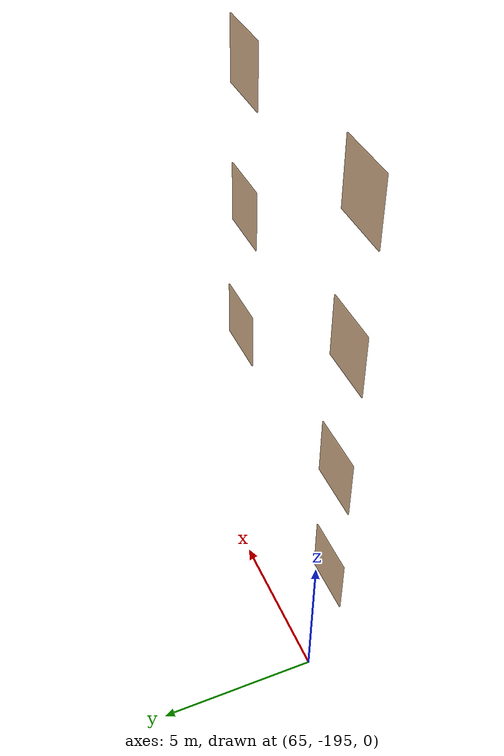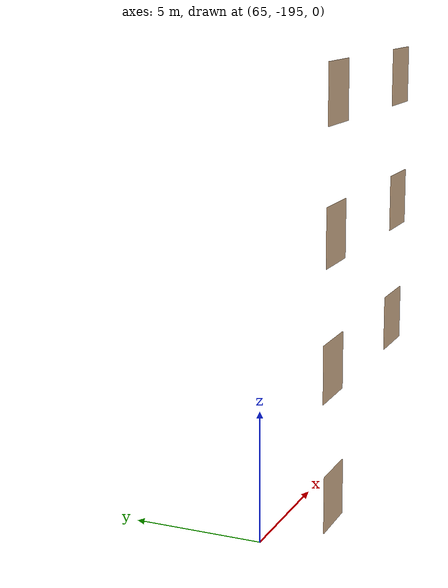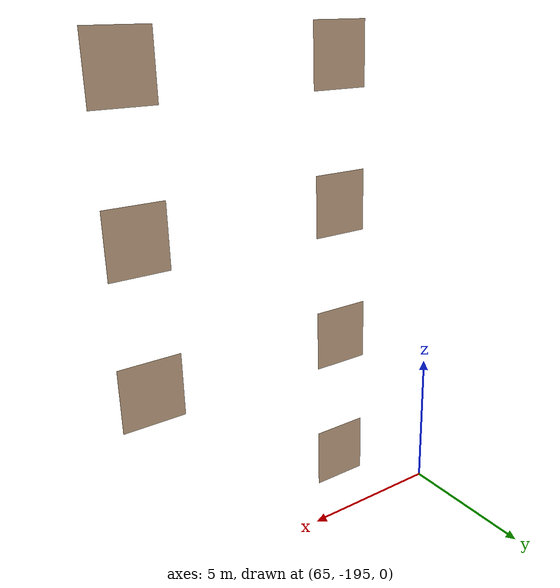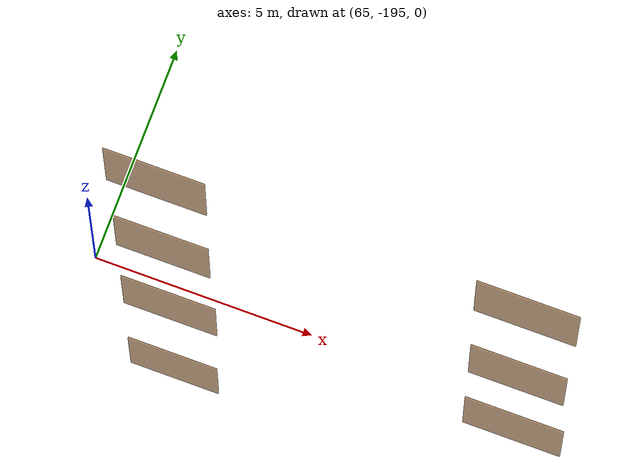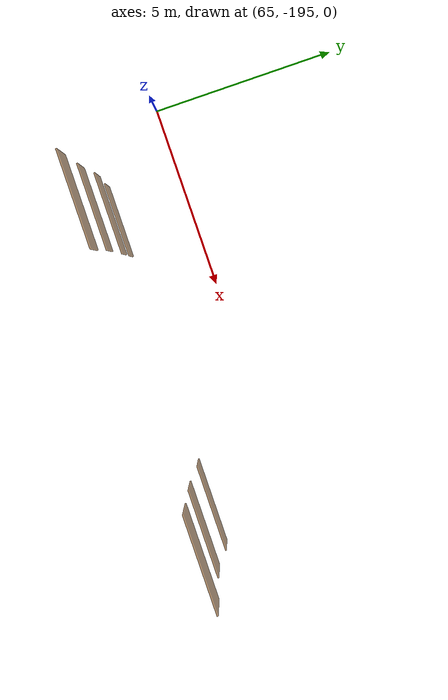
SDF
<sdf version="1.7">
 <world name="sim_world">
  <model name="puerta89">
   <pose>67.54623232504028 -196.90524431716483 0.0 0 0 3.141592653589793</pose>
   <link name="right">
    <pose>0 0 1.11 0 0 0</pose>
    <visual name="right_visual">
     <geometry><box><size>2.0210005369608037 0.03 2.2</size></box></geometry>
     <material>
      <ambient>0.5 0.25 0 0.6</ambient>
      <diffuse>0.5 0.25 0 0.6</diffuse>
      <pbr><metal><metalness>0.0</metalness></metal></pbr>
     </material>
    </visual>
    <collision name="right_collision">
     <geometry><box><size>2.0210005369608037 0.03 2.2</size></box></geometry>
     <surface><contact><collide_bitmask>0x02</collide_bitmask></contact></surface>
    </collision>
    <inertial>
     <mass>50.0</mass>
     <inertia><ixx>20.17041666666667</ixx><iyy>37.18517987664941</iyy><izz>17.022263209982736</izz></inertia>
    </inertial>
   </link>
   <joint name="right_joint" type="revolute">
    <parent>world</parent>
    <child>right</child>
    <axis><xyz>0 0 -1</xyz><limit><lower>0</lower><upper>1.57</upper></limit></axis>
    <pose>1.0155002684804018 0 0 0 0 0</pose>
   </joint>
   <plugin name="register_component" filename="libregister_component.so">
    <component name="Door">
     <v_max_door>0.5</v_max_door>
     <a_max_door>0.3</a_max_door>
     <a_nom_door>0.15</a_nom_door>
     <dx_min_door>0.01</dx_min_door>
     <f_max_door>500.0</f_max_door>
     <ros_interface>true</ros_interface>
     <door name="puerta89" type="SwingDoor" left_joint_name="empty_joint" right_joint_name="right_joint"/>
    </component>
   </plugin>
  </model>
  <model name="puerta3186">
   <pose>67.54969612150772 -196.83661211145593 5.0 0 0 -3.141581399112606</pose>
   <link name="right">
    <pose>0 0 1.11 0 0 0</pose>
    <visual name="right_visual">
     <geometry><box><size>2.0685419905701186 0.03 2.2</size></box></geometry>
     <material>
      <ambient>0.5 0.25 0 0.6</ambient>
      <diffuse>0.5 0.25 0 0.6</diffuse>
      <pbr><metal><metalness>0.0</metalness></metal></pbr>
     </material>
    </visual>
    <collision name="right_collision">
     <geometry><box><size>2.0685419905701186 0.03 2.2</size></box></geometry>
     <surface><contact><collide_bitmask>0x02</collide_bitmask></contact></surface>
    </collision>
    <inertial>
     <mass>50.0</mass>
     <inertia><ixx>20.17041666666667</ixx><iyy>37.995274861465795</iyy><izz>17.83235819479912</izz></inertia>
    </inertial>
   </link>
   <joint name="right_joint" type="revolute">
    <parent>world</parent>
    <child>right</child>
    <axis><xyz>0 0 -1</xyz><limit><lower>0</lower><upper>1.57</upper></limit></axis>
    <pose>1.0392709952850592 0 0 0 0 0</pose>
   </joint>
   <plugin name="register_component" filename="libregister_component.so">
    <component name="Door">
     <v_max_door>0.5</v_max_door>
     <a_max_door>0.3</a_max_door>
     <a_nom_door>0.15</a_nom_door>
     <dx_min_door>0.01</dx_min_door>
     <f_max_door>500.0</f_max_door>
     <ros_interface>true</ros_interface>
     <door name="puerta3186" type="SwingDoor" left_joint_name="empty_joint" right_joint_name="right_joint"/>
    </component>
   </plugin>
  </model>
  <model name="puerta3187">
   <pose>75.07376055382997 -196.7878787243191 5.0 0 0 1.1254477184163925e-05</pose>
   <link name="right">
    <pose>0 0 1.11 0 0 0</pose>
    <visual name="right_visual">
     <geometry><box><size>2.1414613560081013 0.03 2.2</size></box></geometry>
     <material>
      <ambient>0.5 0.25 0 0.6</ambient>
      <diffuse>0.5 0.25 0 0.6</diffuse>
      <pbr><metal><metalness>0.0</metalness></metal></pbr>
     </material>
    </visual>
    <collision name="right_collision">
     <geometry><box><size>2.1414613560081013 0.03 2.2</size></box></geometry>
     <surface><contact><collide_bitmask>0x02</collide_bitmask></contact></surface>
    </collision>
    <inertial>
     <mass>50.0</mass>
     <inertia><ixx>20.17041666666667</ixx><iyy>39.27440308031691</iyy><izz>19.111486413650233</izz></inertia>
    </inertial>
   </link>
   <joint name="right_joint" type="revolute">
    <parent>world</parent>
    <child>right</child>
    <axis><xyz>0 0 1</xyz><limit><lower>0</lower><upper>1.57</upper></limit></axis>
    <pose>1.0757306780040505 0 0 0 0 0</pose>
   </joint>
   <plugin name="register_component" filename="libregister_component.so">
    <component name="Door">
     <v_max_door>0.5</v_max_door>
     <a_max_door>0.3</a_max_door>
     <a_nom_door>0.15</a_nom_door>
     <dx_min_door>0.01</dx_min_door>
     <f_max_door>500.0</f_max_door>
     <ros_interface>true</ros_interface>
     <door name="puerta3187" type="SwingDoor" left_joint_name="empty_joint" right_joint_name="right_joint"/>
    </component>
   </plugin>
  </model>
  <model name="puerta5283">
   <pose>67.54475383392965 -196.89025838553226 10.0 0 0 3.1415879627127286</pose>
   <link name="right">
    <pose>0 0 1.11 0 0 0</pose>
    <visual name="right_visual">
     <geometry><box><size>2.001789246754653 0.03 2.2</size></box></geometry>
     <material>
      <ambient>0.5 0.25 0 0.6</ambient>
      <diffuse>0.5 0.25 0 0.6</diffuse>
      <pbr><metal><metalness>0.0</metalness></metal></pbr>
     </material>
    </visual>
    <collision name="right_collision">
     <geometry><box><size>2.001789246754653 0.03 2.2</size></box></geometry>
     <surface><contact><collide_bitmask>0x02</collide_bitmask></contact></surface>
    </collision>
    <inertial>
     <mass>50.0</mass>
     <inertia><ixx>20.17041666666667</ixx><iyy>36.86316745176068</iyy><izz>16.700250785094006</izz></inertia>
    </inertial>
   </link>
   <joint name="right_joint" type="revolute">
    <parent>world</parent>
    <child>right</child>
    <axis><xyz>0 0 -1</xyz><limit><lower>0</lower><upper>1.57</upper></limit></axis>
    <pose>1.0058946233773265 0 0 0 0 0</pose>
   </joint>
   <plugin name="register_component" filename="libregister_component.so">
    <component name="Door">
     <v_max_door>0.5</v_max_door>
     <a_max_door>0.3</a_max_door>
     <a_nom_door>0.15</a_nom_door>
     <dx_min_door>0.01</dx_min_door>
     <f_max_door>500.0</f_max_door>
     <ros_interface>true</ros_interface>
     <door name="puerta5283" type="SwingDoor" left_joint_name="empty_joint" right_joint_name="right_joint"/>
    </component>
   </plugin>
  </model>
  <model name="puerta5284">
   <pose>75.05586300327502 -196.91072641288815 10.0 0 0 -4.690877064614575e-06</pose>
   <link name="right">
    <pose>0 0 1.11 0 0 0</pose>
    <visual name="right_visual">
     <geometry><box><size>2.0120235357011587 0.03 2.2</size></box></geometry>
     <material>
      <ambient>0.5 0.25 0 0.6</ambient>
      <diffuse>0.5 0.25 0 0.6</diffuse>
      <pbr><metal><metalness>0.0</metalness></metal></pbr>
     </material>
    </visual>
    <collision name="right_collision">
     <geometry><box><size>2.0120235357011587 0.03 2.2</size></box></geometry>
     <surface><contact><collide_bitmask>0x02</collide_bitmask></contact></surface>
    </collision>
    <inertial>
     <mass>50.0</mass>
     <inertia><ixx>20.17041666666667</ixx><iyy>37.03432795089748</iyy><izz>16.8714112842308</izz></inertia>
    </inertial>
   </link>
   <joint name="right_joint" type="revolute">
    <parent>world</parent>
    <child>right</child>
    <axis><xyz>0 0 1</xyz><limit><lower>0</lower><upper>1.57</upper></limit></axis>
    <pose>1.0110117678505792 0 0 0 0 0</pose>
   </joint>
   <plugin name="register_component" filename="libregister_component.so">
    <component name="Door">
     <v_max_door>0.5</v_max_door>
     <a_max_door>0.3</a_max_door>
     <a_nom_door>0.15</a_nom_door>
     <dx_min_door>0.01</dx_min_door>
     <f_max_door>500.0</f_max_door>
     <ros_interface>true</ros_interface>
     <door name="puerta5284" type="SwingDoor" left_joint_name="empty_joint" right_joint_name="right_joint"/>
    </component>
   </plugin>
  </model>
  <model name="puerta7220">
   <pose>67.55072885061207 -196.91707690378482 15.0 0 0 3.1415526726865672</pose>
   <link name="right">
    <pose>0 0 1.11 0 0 0</pose>
    <visual name="right_visual">
     <geometry><box><size>2.059728067253537 0.03 2.2</size></box></geometry>
     <material>
      <ambient>0.5 0.25 0 0.6</ambient>
      <diffuse>0.5 0.25 0 0.6</diffuse>
      <pbr><metal><metalness>0.0</metalness></metal></pbr>
     </material>
    </visual>
    <collision name="right_collision">
     <geometry><box><size>2.059728067253537 0.03 2.2</size></box></geometry>
     <surface><contact><collide_bitmask>0x02</collide_bitmask></contact></surface>
    </collision>
    <inertial>
     <mass>50.0</mass>
     <inertia><ixx>20.17041666666667</ixx><iyy>37.84366546263331</iyy><izz>17.680748795966633</izz></inertia>
    </inertial>
   </link>
   <joint name="right_joint" type="revolute">
    <parent>world</parent>
    <child>right</child>
    <axis><xyz>0 0 -1</xyz><limit><lower>0</lower><upper>1.57</upper></limit></axis>
    <pose>1.0348640336267685 0 0 0 0 0</pose>
   </joint>
   <plugin name="register_component" filename="libregister_component.so">
    <component name="Door">
     <v_max_door>0.5</v_max_door>
     <a_max_door>0.3</a_max_door>
     <a_nom_door>0.15</a_nom_door>
     <dx_min_door>0.01</dx_min_door>
     <f_max_door>500.0</f_max_door>
     <ros_interface>true</ros_interface>
     <door name="puerta7220" type="SwingDoor" left_joint_name="empty_joint" right_joint_name="right_joint"/>
    </component>
   </plugin>
  </model>
  <model name="puerta7221">
   <pose>75.07540165194135 -196.89985846420916 15.0 0 0 -3.998090320943168e-05</pose>
   <link name="right">
    <pose>0 0 1.11 0 0 0</pose>
    <visual name="right_visual">
     <geometry><box><size>2.0772473500303446 0.03 2.2</size></box></geometry>
     <material>
      <ambient>0.5 0.25 0 0.6</ambient>
      <diffuse>0.5 0.25 0 0.6</diffuse>
      <pbr><metal><metalness>0.0</metalness></metal></pbr>
     </material>
    </visual>
    <collision name="right_collision">
     <geometry><box><size>2.0772473500303446 0.03 2.2</size></box></geometry>
     <surface><contact><collide_bitmask>0x02</collide_bitmask></contact></surface>
    </collision>
    <inertial>
     <mass>50.0</mass>
     <inertia><ixx>20.17041666666667</ixx><iyy>38.14565230503371</iyy><izz>17.982735638367036</izz></inertia>
    </inertial>
   </link>
   <joint name="right_joint" type="revolute">
    <parent>world</parent>
    <child>right</child>
    <axis><xyz>0 0 1</xyz><limit><lower>0</lower><upper>1.57</upper></limit></axis>
    <pose>1.0436236750151722 0 0 0 0 0</pose>
   </joint>
   <plugin name="register_component" filename="libregister_component.so">
    <component name="Door">
     <v_max_door>0.5</v_max_door>
     <a_max_door>0.3</a_max_door>
     <a_nom_door>0.15</a_nom_door>
     <dx_min_door>0.01</dx_min_door>
     <f_max_door>500.0</f_max_door>
     <ros_interface>true</ros_interface>
     <door name="puerta7221" type="SwingDoor" left_joint_name="empty_joint" right_joint_name="right_joint"/>
    </component>
   </plugin>
  </model>
 </world>
</sdf>
